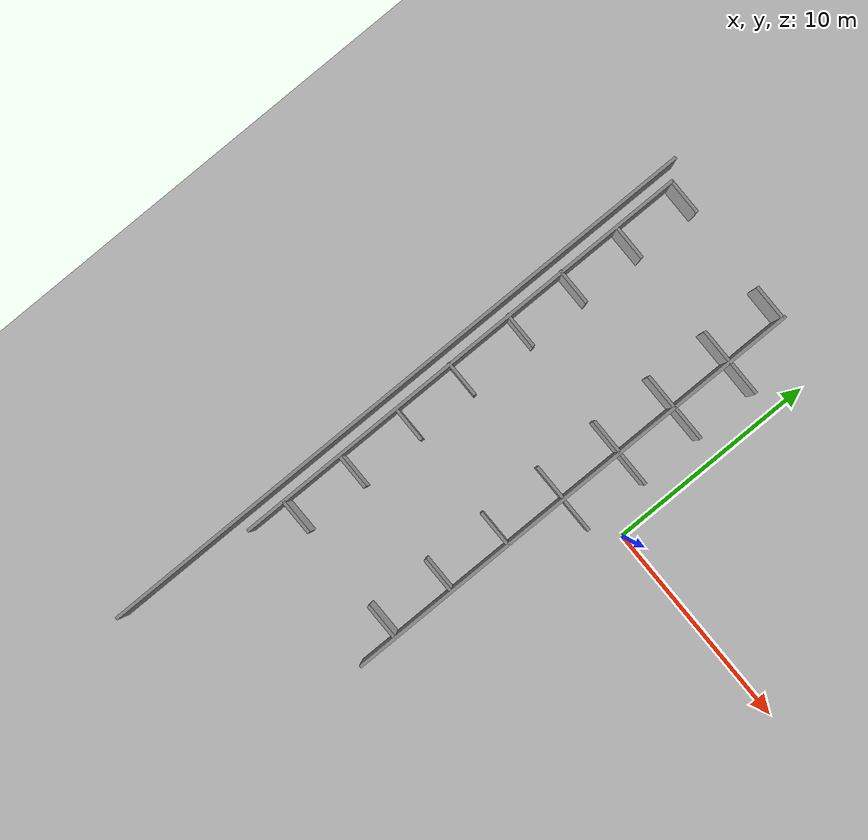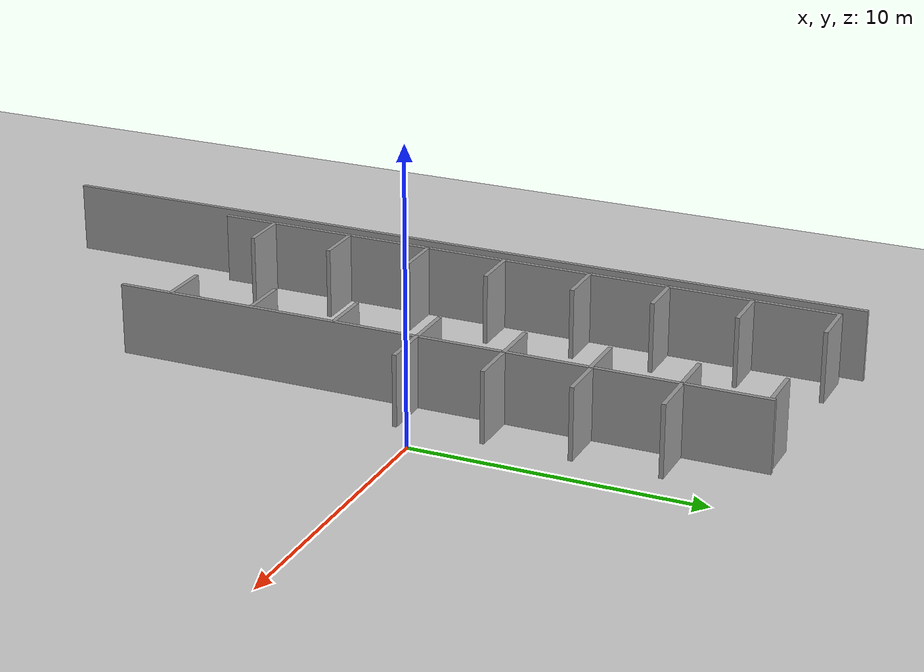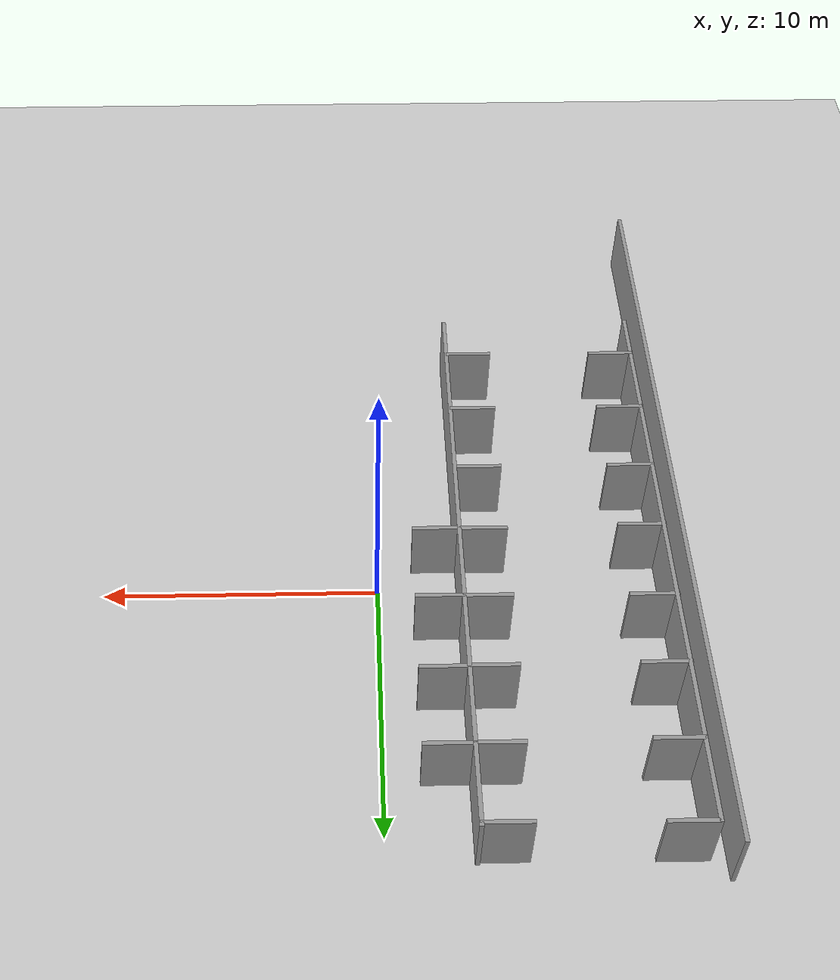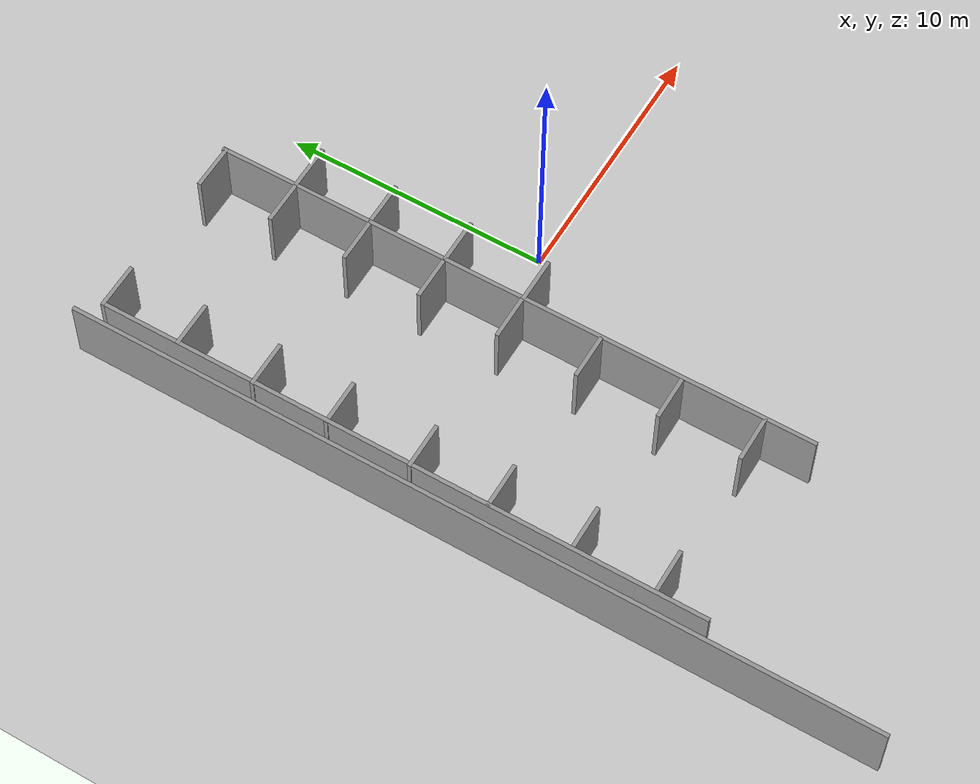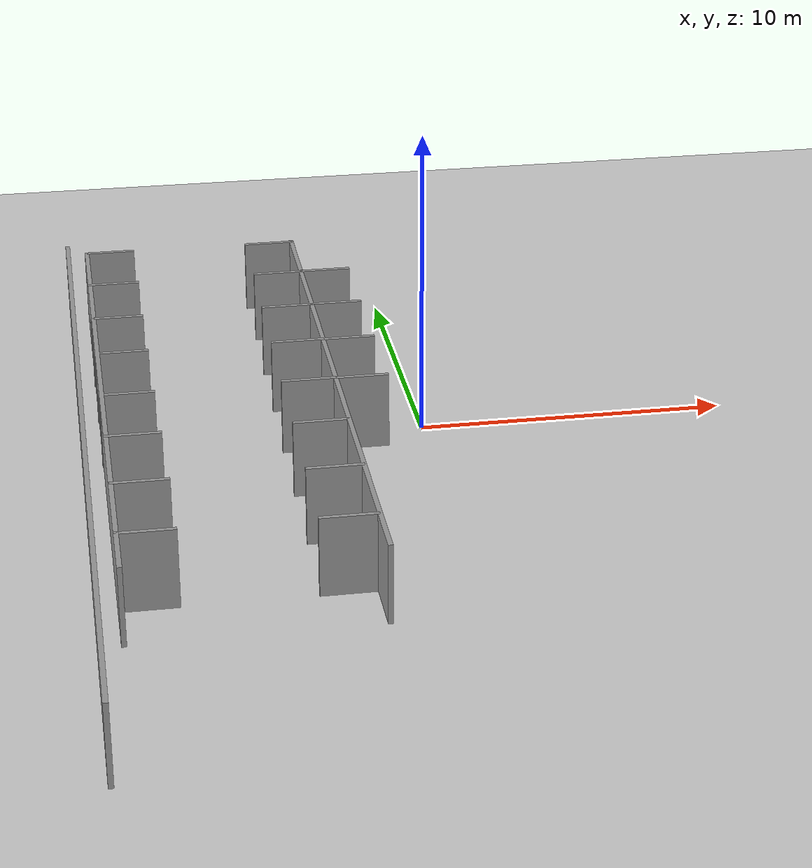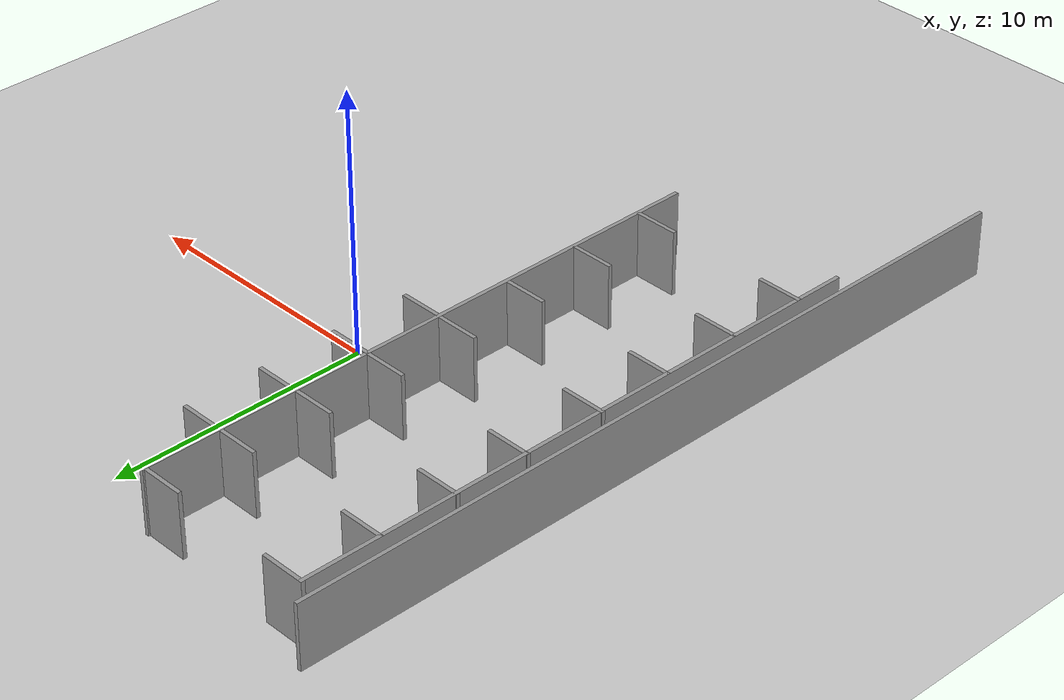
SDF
<sdf version="1.6">
 <world name="default">
  <model name="ground_plane">
   <static>1</static>
   <link name="link">
    <collision name="collision">
     <geometry><plane><normal>0 0 1</normal><size>100 100</size></plane></geometry>
     <surface>
      <contact><collide_bitmask>65535</collide_bitmask></contact>
      <friction><ode><mu>100</mu><mu2>50</mu2></ode></friction>
     </surface>
    </collision>
    <visual name="visual">
     <cast_shadows>0</cast_shadows>
     <geometry><plane><normal>0 0 1</normal><size>100 100</size></plane></geometry>
     <material>
      <script><uri>file://media/materials/scripts/gazebo.material</uri><name>Gazebo/Grey</name></script>
     </material>
    </visual>
   </link>
  </model>
  <model name="Warehouse_Map">
   <link name="Wall_10">
    <pose>-23.4629 14.3501 0 0 -0 3.14159</pose>
    <visual name="Wall_10_Visual">
     <pose>0 0 1.25 0 -0 0</pose>
     <geometry><box><size>1.75 0.15 2.5</size></box></geometry>
     <material>
      <script><uri>file://media/materials/scripts/gazebo.material</uri><name>Gazebo/Grey</name></script>
      <ambient>1 1 1 1</ambient>
      <shader type="pixel"/>
     </material>
     <meta><layer>0</layer></meta>
    </visual>
    <collision name="Wall_10_Collision">
     <pose>0 0 1.25 0 -0 0</pose>
     <geometry><box><size>1.75 0.15 2.5</size></box></geometry>
     <surface>
      <friction>
       <ode><mu>1</mu><mu2>1</mu2><fdir1>0 0 0</fdir1><slip1>0</slip1><slip2>0</slip2></ode>
       <torsional>
        <coefficient>1</coefficient>
        <patch_radius>0</patch_radius>
        <surface_radius>0</surface_radius>
        <use_patch_radius>1</use_patch_radius>
        <ode><slip>0</slip></ode>
       </torsional>
      </friction>
      <bounce><restitution_coefficient>0</restitution_coefficient><threshold>1e+06</threshold></bounce>
      <contact>
       <collide_without_contact>0</collide_without_contact>
       <collide_without_contact_bitmask>1</collide_without_contact_bitmask>
       <collide_bitmask>1</collide_bitmask>
       <ode>
        <soft_cfm>0</soft_cfm>
        <soft_erp>0.2</soft_erp>
        <kp>1e+13</kp>
        <kd>1</kd>
        <max_vel>0.01</max_vel>
        <min_depth>0</min_depth>
       </ode>
       <bullet>
        <split_impulse>1</split_impulse>
        <split_impulse_penetration_threshold>-0.01</split_impulse_penetration_threshold>
        <soft_cfm>0</soft_cfm>
        <soft_erp>0.2</soft_erp>
        <kp>1e+13</kp>
        <kd>1</kd>
       </bullet>
      </contact>
     </surface>
    </collision>
   </link>
   <link name="Wall_10_clone">
    <pose>-23.4598 11.3691 0 0 -0 3.14159</pose>
    <visual name="Wall_10_Visual">
     <pose>0 0 1.25 0 -0 0</pose>
     <geometry><box><size>1.75 0.15 2.5</size></box></geometry>
     <material>
      <script><uri>file://media/materials/scripts/gazebo.material</uri><name>Gazebo/Grey</name></script>
      <ambient>1 1 1 1</ambient>
      <shader type="pixel"/>
     </material>
     <meta><layer>0</layer></meta>
    </visual>
    <collision name="Wall_10_Collision">
     <pose>0 0 1.25 0 -0 0</pose>
     <geometry><box><size>1.75 0.15 2.5</size></box></geometry>
     <surface>
      <friction>
       <ode><mu>1</mu><mu2>1</mu2><fdir1>0 0 0</fdir1><slip1>0</slip1><slip2>0</slip2></ode>
       <torsional>
        <coefficient>1</coefficient>
        <patch_radius>0</patch_radius>
        <surface_radius>0</surface_radius>
        <use_patch_radius>1</use_patch_radius>
        <ode><slip>0</slip></ode>
       </torsional>
      </friction>
      <bounce><restitution_coefficient>0</restitution_coefficient><threshold>1e+06</threshold></bounce>
      <contact>
       <collide_without_contact>0</collide_without_contact>
       <collide_without_contact_bitmask>1</collide_without_contact_bitmask>
       <collide_bitmask>1</collide_bitmask>
       <ode>
        <soft_cfm>0</soft_cfm>
        <soft_erp>0.2</soft_erp>
        <kp>1e+13</kp>
        <kd>1</kd>
        <max_vel>0.01</max_vel>
        <min_depth>0</min_depth>
       </ode>
       <bullet>
        <split_impulse>1</split_impulse>
        <split_impulse_penetration_threshold>-0.01</split_impulse_penetration_threshold>
        <soft_cfm>0</soft_cfm>
        <soft_erp>0.2</soft_erp>
        <kp>1e+13</kp>
        <kd>1</kd>
       </bullet>
      </contact>
     </surface>
    </collision>
   </link>
   <link name="Wall_10_clone_0">
    <pose>-23.4859 8.40001 0 0 -0 3.14159</pose>
    <visual name="Wall_10_Visual">
     <pose>0 0 1.25 0 -0 0</pose>
     <geometry><box><size>1.75 0.15 2.5</size></box></geometry>
     <material>
      <script><uri>file://media/materials/scripts/gazebo.material</uri><name>Gazebo/Grey</name></script>
      <ambient>1 1 1 1</ambient>
      <shader type="pixel"/>
     </material>
     <meta><layer>0</layer></meta>
    </visual>
    <collision name="Wall_10_Collision">
     <pose>0 0 1.25 0 -0 0</pose>
     <geometry><box><size>1.75 0.15 2.5</size></box></geometry>
     <surface>
      <friction>
       <ode><mu>1</mu><mu2>1</mu2><fdir1>0 0 0</fdir1><slip1>0</slip1><slip2>0</slip2></ode>
       <torsional>
        <coefficient>1</coefficient>
        <patch_radius>0</patch_radius>
        <surface_radius>0</surface_radius>
        <use_patch_radius>1</use_patch_radius>
        <ode><slip>0</slip></ode>
       </torsional>
      </friction>
      <bounce><restitution_coefficient>0</restitution_coefficient><threshold>1e+06</threshold></bounce>
      <contact>
       <collide_without_contact>0</collide_without_contact>
       <collide_without_contact_bitmask>1</collide_without_contact_bitmask>
       <collide_bitmask>1</collide_bitmask>
       <ode>
        <soft_cfm>0</soft_cfm>
        <soft_erp>0.2</soft_erp>
        <kp>1e+13</kp>
        <kd>1</kd>
        <max_vel>0.01</max_vel>
        <min_depth>0</min_depth>
       </ode>
       <bullet>
        <split_impulse>1</split_impulse>
        <split_impulse_penetration_threshold>-0.01</split_impulse_penetration_threshold>
        <soft_cfm>0</soft_cfm>
        <soft_erp>0.2</soft_erp>
        <kp>1e+13</kp>
        <kd>1</kd>
       </bullet>
      </contact>
     </surface>
    </collision>
   </link>
   <link name="Wall_10_clone_1">
    <pose>-23.4859 5.53501 0 0 -0 3.14159</pose>
    <visual name="Wall_10_Visual">
     <pose>0 0 1.25 0 -0 0</pose>
     <geometry><box><size>1.75 0.15 2.5</size></box></geometry>
     <material>
      <script><uri>file://media/materials/scripts/gazebo.material</uri><name>Gazebo/Grey</name></script>
      <ambient>1 1 1 1</ambient>
      <shader type="pixel"/>
     </material>
     <meta><layer>0</layer></meta>
    </visual>
    <collision name="Wall_10_Collision">
     <pose>0 0 1.25 0 -0 0</pose>
     <geometry><box><size>1.75 0.15 2.5</size></box></geometry>
     <surface>
      <friction>
       <ode><mu>1</mu><mu2>1</mu2><fdir1>0 0 0</fdir1><slip1>0</slip1><slip2>0</slip2></ode>
       <torsional>
        <coefficient>1</coefficient>
        <patch_radius>0</patch_radius>
        <surface_radius>0</surface_radius>
        <use_patch_radius>1</use_patch_radius>
        <ode><slip>0</slip></ode>
       </torsional>
      </friction>
      <bounce><restitution_coefficient>0</restitution_coefficient><threshold>1e+06</threshold></bounce>
      <contact>
       <collide_without_contact>0</collide_without_contact>
       <collide_without_contact_bitmask>1</collide_without_contact_bitmask>
       <collide_bitmask>1</collide_bitmask>
       <ode>
        <soft_cfm>0</soft_cfm>
        <soft_erp>0.2</soft_erp>
        <kp>1e+13</kp>
        <kd>1</kd>
        <max_vel>0.01</max_vel>
        <min_depth>0</min_depth>
       </ode>
       <bullet>
        <split_impulse>1</split_impulse>
        <split_impulse_penetration_threshold>-0.01</split_impulse_penetration_threshold>
        <soft_cfm>0</soft_cfm>
        <soft_erp>0.2</soft_erp>
        <kp>1e+13</kp>
        <kd>1</kd>
       </bullet>
      </contact>
     </surface>
    </collision>
   </link>
   <link name="Wall_10_clone_10">
    <pose>-17.7362 5.4991 0 0 -0 3.14159</pose>
    <visual name="Wall_10_Visual">
     <pose>0 0 1.25 0 -0 0</pose>
     <geometry><box><size>1.75 0.15 2.5</size></box></geometry>
     <material>
      <script><uri>file://media/materials/scripts/gazebo.material</uri><name>Gazebo/Grey</name></script>
      <ambient>1 1 1 1</ambient>
      <shader type="pixel"/>
     </material>
     <meta><layer>0</layer></meta>
    </visual>
    <collision name="Wall_10_Collision">
     <pose>0 0 1.25 0 -0 0</pose>
     <geometry><box><size>1.75 0.15 2.5</size></box></geometry>
     <surface>
      <friction>
       <ode><mu>1</mu><mu2>1</mu2><fdir1>0 0 0</fdir1><slip1>0</slip1><slip2>0</slip2></ode>
       <torsional>
        <coefficient>1</coefficient>
        <patch_radius>0</patch_radius>
        <surface_radius>0</surface_radius>
        <use_patch_radius>1</use_patch_radius>
        <ode><slip>0</slip></ode>
       </torsional>
      </friction>
      <bounce><restitution_coefficient>0</restitution_coefficient><threshold>1e+06</threshold></bounce>
      <contact>
       <collide_without_contact>0</collide_without_contact>
       <collide_without_contact_bitmask>1</collide_without_contact_bitmask>
       <collide_bitmask>1</collide_bitmask>
       <ode>
        <soft_cfm>0</soft_cfm>
        <soft_erp>0.2</soft_erp>
        <kp>1e+13</kp>
        <kd>1</kd>
        <max_vel>0.01</max_vel>
        <min_depth>0</min_depth>
       </ode>
       <bullet>
        <split_impulse>1</split_impulse>
        <split_impulse_penetration_threshold>-0.01</split_impulse_penetration_threshold>
        <soft_cfm>0</soft_cfm>
        <soft_erp>0.2</soft_erp>
        <kp>1e+13</kp>
        <kd>1</kd>
       </bullet>
      </contact>
     </surface>
    </collision>
   </link>
   <link name="Wall_10_clone_11">
    <pose>-17.728 8.43865 0 0 -0 3.14159</pose>
    <visual name="Wall_10_Visual">
     <pose>0 0 1.25 0 -0 0</pose>
     <geometry><box><size>1.75 0.15 2.5</size></box></geometry>
     <material>
      <script><uri>file://media/materials/scripts/gazebo.material</uri><name>Gazebo/Grey</name></script>
      <ambient>1 1 1 1</ambient>
      <shader type="pixel"/>
     </material>
     <meta><layer>0</layer></meta>
    </visual>
    <collision name="Wall_10_Collision">
     <pose>0 0 1.25 0 -0 0</pose>
     <geometry><box><size>1.75 0.15 2.5</size></box></geometry>
     <surface>
      <friction>
       <ode><mu>1</mu><mu2>1</mu2><fdir1>0 0 0</fdir1><slip1>0</slip1><slip2>0</slip2></ode>
       <torsional>
        <coefficient>1</coefficient>
        <patch_radius>0</patch_radius>
        <surface_radius>0</surface_radius>
        <use_patch_radius>1</use_patch_radius>
        <ode><slip>0</slip></ode>
       </torsional>
      </friction>
      <bounce><restitution_coefficient>0</restitution_coefficient><threshold>1e+06</threshold></bounce>
      <contact>
       <collide_without_contact>0</collide_without_contact>
       <collide_without_contact_bitmask>1</collide_without_contact_bitmask>
       <collide_bitmask>1</collide_bitmask>
       <ode>
        <soft_cfm>0</soft_cfm>
        <soft_erp>0.2</soft_erp>
        <kp>1e+13</kp>
        <kd>1</kd>
        <max_vel>0.01</max_vel>
        <min_depth>0</min_depth>
       </ode>
       <bullet>
        <split_impulse>1</split_impulse>
        <split_impulse_penetration_threshold>-0.01</split_impulse_penetration_threshold>
        <soft_cfm>0</soft_cfm>
        <soft_erp>0.2</soft_erp>
        <kp>1e+13</kp>
        <kd>1</kd>
       </bullet>
      </contact>
     </surface>
    </collision>
   </link>
   <link name="Wall_10_clone_12">
    <pose>-17.6835 11.4373 0 0 -0 3.14159</pose>
    <visual name="Wall_10_Visual">
     <pose>0 0 1.25 0 -0 0</pose>
     <geometry><box><size>1.75 0.15 2.5</size></box></geometry>
     <material>
      <script><uri>file://media/materials/scripts/gazebo.material</uri><name>Gazebo/Grey</name></script>
      <ambient>1 1 1 1</ambient>
      <shader type="pixel"/>
     </material>
     <meta><layer>0</layer></meta>
    </visual>
    <collision name="Wall_10_Collision">
     <pose>0 0 1.25 0 -0 0</pose>
     <geometry><box><size>1.75 0.15 2.5</size></box></geometry>
     <surface>
      <friction>
       <ode><mu>1</mu><mu2>1</mu2><fdir1>0 0 0</fdir1><slip1>0</slip1><slip2>0</slip2></ode>
       <torsional>
        <coefficient>1</coefficient>
        <patch_radius>0</patch_radius>
        <surface_radius>0</surface_radius>
        <use_patch_radius>1</use_patch_radius>
        <ode><slip>0</slip></ode>
       </torsional>
      </friction>
      <bounce><restitution_coefficient>0</restitution_coefficient><threshold>1e+06</threshold></bounce>
      <contact>
       <collide_without_contact>0</collide_without_contact>
       <collide_without_contact_bitmask>1</collide_without_contact_bitmask>
       <collide_bitmask>1</collide_bitmask>
       <ode>
        <soft_cfm>0</soft_cfm>
        <soft_erp>0.2</soft_erp>
        <kp>1e+13</kp>
        <kd>1</kd>
        <max_vel>0.01</max_vel>
        <min_depth>0</min_depth>
       </ode>
       <bullet>
        <split_impulse>1</split_impulse>
        <split_impulse_penetration_threshold>-0.01</split_impulse_penetration_threshold>
        <soft_cfm>0</soft_cfm>
        <soft_erp>0.2</soft_erp>
        <kp>1e+13</kp>
        <kd>1</kd>
       </bullet>
      </contact>
     </surface>
    </collision>
   </link>
   <link name="Wall_10_clone_13">
    <pose>-17.7158 14.3021 0 0 -0 3.14159</pose>
    <visual name="Wall_10_Visual">
     <pose>0 0 1.25 0 -0 0</pose>
     <geometry><box><size>1.75 0.15 2.5</size></box></geometry>
     <material>
      <script><uri>file://media/materials/scripts/gazebo.material</uri><name>Gazebo/Grey</name></script>
      <ambient>1 1 1 1</ambient>
      <shader type="pixel"/>
     </material>
     <meta><layer>0</layer></meta>
    </visual>
    <collision name="Wall_10_Collision">
     <pose>0 0 1.25 0 -0 0</pose>
     <geometry><box><size>1.75 0.15 2.5</size></box></geometry>
     <surface>
      <friction>
       <ode><mu>1</mu><mu2>1</mu2><fdir1>0 0 0</fdir1><slip1>0</slip1><slip2>0</slip2></ode>
       <torsional>
        <coefficient>1</coefficient>
        <patch_radius>0</patch_radius>
        <surface_radius>0</surface_radius>
        <use_patch_radius>1</use_patch_radius>
        <ode><slip>0</slip></ode>
       </torsional>
      </friction>
      <bounce><restitution_coefficient>0</restitution_coefficient><threshold>1e+06</threshold></bounce>
      <contact>
       <collide_without_contact>0</collide_without_contact>
       <collide_without_contact_bitmask>1</collide_without_contact_bitmask>
       <collide_bitmask>1</collide_bitmask>
       <ode>
        <soft_cfm>0</soft_cfm>
        <soft_erp>0.2</soft_erp>
        <kp>1e+13</kp>
        <kd>1</kd>
        <max_vel>0.01</max_vel>
        <min_depth>0</min_depth>
       </ode>
       <bullet>
        <split_impulse>1</split_impulse>
        <split_impulse_penetration_threshold>-0.01</split_impulse_penetration_threshold>
        <soft_cfm>0</soft_cfm>
        <soft_erp>0.2</soft_erp>
        <kp>1e+13</kp>
        <kd>1</kd>
       </bullet>
      </contact>
     </surface>
    </collision>
   </link>
   <link name="Wall_10_clone_15">
    <pose>-16.0611 11.447 0 0 -0 3.14159</pose>
    <visual name="Wall_10_Visual">
     <pose>0 0 1.25 0 -0 0</pose>
     <geometry><box><size>1.75 0.15 2.5</size></box></geometry>
     <material>
      <script><uri>file://media/materials/scripts/gazebo.material</uri><name>Gazebo/Grey</name></script>
      <ambient>1 1 1 1</ambient>
      <shader type="pixel"/>
     </material>
     <meta><layer>0</layer></meta>
    </visual>
    <collision name="Wall_10_Collision">
     <pose>0 0 1.25 0 -0 0</pose>
     <geometry><box><size>1.75 0.15 2.5</size></box></geometry>
     <surface>
      <friction>
       <ode><mu>1</mu><mu2>1</mu2><fdir1>0 0 0</fdir1><slip1>0</slip1><slip2>0</slip2></ode>
       <torsional>
        <coefficient>1</coefficient>
        <patch_radius>0</patch_radius>
        <surface_radius>0</surface_radius>
        <use_patch_radius>1</use_patch_radius>
        <ode><slip>0</slip></ode>
       </torsional>
      </friction>
      <bounce><restitution_coefficient>0</restitution_coefficient><threshold>1e+06</threshold></bounce>
      <contact>
       <collide_without_contact>0</collide_without_contact>
       <collide_without_contact_bitmask>1</collide_without_contact_bitmask>
       <collide_bitmask>1</collide_bitmask>
       <ode>
        <soft_cfm>0</soft_cfm>
        <soft_erp>0.2</soft_erp>
        <kp>1e+13</kp>
        <kd>1</kd>
        <max_vel>0.01</max_vel>
        <min_depth>0</min_depth>
       </ode>
       <bullet>
        <split_impulse>1</split_impulse>
        <split_impulse_penetration_threshold>-0.01</split_impulse_penetration_threshold>
        <soft_cfm>0</soft_cfm>
        <soft_erp>0.2</soft_erp>
        <kp>1e+13</kp>
        <kd>1</kd>
       </bullet>
      </contact>
     </surface>
    </collision>
   </link>
   <link name="Wall_10_clone_16">
    <pose>-16.0702 8.46392 0 0 -0 3.14159</pose>
    <visual name="Wall_10_Visual">
     <pose>0 0 1.25 0 -0 0</pose>
     <geometry><box><size>1.75 0.15 2.5</size></box></geometry>
     <material>
      <script><uri>file://media/materials/scripts/gazebo.material</uri><name>Gazebo/Grey</name></script>
      <ambient>1 1 1 1</ambient>
      <shader type="pixel"/>
     </material>
     <meta><layer>0</layer></meta>
    </visual>
    <collision name="Wall_10_Collision">
     <pose>0 0 1.25 0 -0 0</pose>
     <geometry><box><size>1.75 0.15 2.5</size></box></geometry>
     <surface>
      <friction>
       <ode><mu>1</mu><mu2>1</mu2><fdir1>0 0 0</fdir1><slip1>0</slip1><slip2>0</slip2></ode>
       <torsional>
        <coefficient>1</coefficient>
        <patch_radius>0</patch_radius>
        <surface_radius>0</surface_radius>
        <use_patch_radius>1</use_patch_radius>
        <ode><slip>0</slip></ode>
       </torsional>
      </friction>
      <bounce><restitution_coefficient>0</restitution_coefficient><threshold>1e+06</threshold></bounce>
      <contact>
       <collide_without_contact>0</collide_without_contact>
       <collide_without_contact_bitmask>1</collide_without_contact_bitmask>
       <collide_bitmask>1</collide_bitmask>
       <ode>
        <soft_cfm>0</soft_cfm>
        <soft_erp>0.2</soft_erp>
        <kp>1e+13</kp>
        <kd>1</kd>
        <max_vel>0.01</max_vel>
        <min_depth>0</min_depth>
       </ode>
       <bullet>
        <split_impulse>1</split_impulse>
        <split_impulse_penetration_threshold>-0.01</split_impulse_penetration_threshold>
        <soft_cfm>0</soft_cfm>
        <soft_erp>0.2</soft_erp>
        <kp>1e+13</kp>
        <kd>1</kd>
       </bullet>
      </contact>
     </surface>
    </collision>
   </link>
   <link name="Wall_10_clone_17">
    <pose>-16.0699 5.48035 0 0 -0 3.14159</pose>
    <visual name="Wall_10_Visual">
     <pose>0 0 1.25 0 -0 0</pose>
     <geometry><box><size>1.75 0.15 2.5</size></box></geometry>
     <material>
      <script><uri>file://media/materials/scripts/gazebo.material</uri><name>Gazebo/Grey</name></script>
      <ambient>1 1 1 1</ambient>
      <shader type="pixel"/>
     </material>
     <meta><layer>0</layer></meta>
    </visual>
    <collision name="Wall_10_Collision">
     <pose>0 0 1.25 0 -0 0</pose>
     <geometry><box><size>1.75 0.15 2.5</size></box></geometry>
     <surface>
      <friction>
       <ode><mu>1</mu><mu2>1</mu2><fdir1>0 0 0</fdir1><slip1>0</slip1><slip2>0</slip2></ode>
       <torsional>
        <coefficient>1</coefficient>
        <patch_radius>0</patch_radius>
        <surface_radius>0</surface_radius>
        <use_patch_radius>1</use_patch_radius>
        <ode><slip>0</slip></ode>
       </torsional>
      </friction>
      <bounce><restitution_coefficient>0</restitution_coefficient><threshold>1e+06</threshold></bounce>
      <contact>
       <collide_without_contact>0</collide_without_contact>
       <collide_without_contact_bitmask>1</collide_without_contact_bitmask>
       <collide_bitmask>1</collide_bitmask>
       <ode>
        <soft_cfm>0</soft_cfm>
        <soft_erp>0.2</soft_erp>
        <kp>1e+13</kp>
        <kd>1</kd>
        <max_vel>0.01</max_vel>
        <min_depth>0</min_depth>
       </ode>
       <bullet>
        <split_impulse>1</split_impulse>
        <split_impulse_penetration_threshold>-0.01</split_impulse_penetration_threshold>
        <soft_cfm>0</soft_cfm>
        <soft_erp>0.2</soft_erp>
        <kp>1e+13</kp>
        <kd>1</kd>
       </bullet>
      </contact>
     </surface>
    </collision>
   </link>
   <link name="Wall_10_clone_18">
    <pose>-16.0825 2.42965 0 0 -0 3.14159</pose>
    <visual name="Wall_10_Visual">
     <pose>0 0 1.25 0 -0 0</pose>
     <geometry><box><size>1.75 0.15 2.5</size></box></geometry>
     <material>
      <script><uri>file://media/materials/scripts/gazebo.material</uri><name>Gazebo/Grey</name></script>
      <ambient>1 1 1 1</ambient>
      <shader type="pixel"/>
     </material>
     <meta><layer>0</layer></meta>
    </visual>
    <collision name="Wall_10_Collision">
     <pose>0 0 1.25 0 -0 0</pose>
     <geometry><box><size>1.75 0.15 2.5</size></box></geometry>
     <surface>
      <friction>
       <ode><mu>1</mu><mu2>1</mu2><fdir1>0 0 0</fdir1><slip1>0</slip1><slip2>0</slip2></ode>
       <torsional>
        <coefficient>1</coefficient>
        <patch_radius>0</patch_radius>
        <surface_radius>0</surface_radius>
        <use_patch_radius>1</use_patch_radius>
        <ode><slip>0</slip></ode>
       </torsional>
      </friction>
      <bounce><restitution_coefficient>0</restitution_coefficient><threshold>1e+06</threshold></bounce>
      <contact>
       <collide_without_contact>0</collide_without_contact>
       <collide_without_contact_bitmask>1</collide_without_contact_bitmask>
       <collide_bitmask>1</collide_bitmask>
       <ode>
        <soft_cfm>0</soft_cfm>
        <soft_erp>0.2</soft_erp>
        <kp>1e+13</kp>
        <kd>1</kd>
        <max_vel>0.01</max_vel>
        <min_depth>0</min_depth>
       </ode>
       <bullet>
        <split_impulse>1</split_impulse>
        <split_impulse_penetration_threshold>-0.01</split_impulse_penetration_threshold>
        <soft_cfm>0</soft_cfm>
        <soft_erp>0.2</soft_erp>
        <kp>1e+13</kp>
        <kd>1</kd>
       </bullet>
      </contact>
     </surface>
    </collision>
   </link>
   <link name="Wall_10_clone_2">
    <pose>-23.4859 2.35766 0 0 -0 3.14159</pose>
    <visual name="Wall_10_Visual">
     <pose>0 0 1.25 0 -0 0</pose>
     <geometry><box><size>1.75 0.15 2.5</size></box></geometry>
     <material>
      <script><uri>file://media/materials/scripts/gazebo.material</uri><name>Gazebo/Grey</name></script>
      <ambient>1 1 1 1</ambient>
      <shader type="pixel"/>
     </material>
     <meta><layer>0</layer></meta>
    </visual>
    <collision name="Wall_10_Collision">
     <pose>0 0 1.25 0 -0 0</pose>
     <geometry><box><size>1.75 0.15 2.5</size></box></geometry>
     <surface>
      <friction>
       <ode><mu>1</mu><mu2>1</mu2><fdir1>0 0 0</fdir1><slip1>0</slip1><slip2>0</slip2></ode>
       <torsional>
        <coefficient>1</coefficient>
        <patch_radius>0</patch_radius>
        <surface_radius>0</surface_radius>
        <use_patch_radius>1</use_patch_radius>
        <ode><slip>0</slip></ode>
       </torsional>
      </friction>
      <bounce><restitution_coefficient>0</restitution_coefficient><threshold>1e+06</threshold></bounce>
      <contact>
       <collide_without_contact>0</collide_without_contact>
       <collide_without_contact_bitmask>1</collide_without_contact_bitmask>
       <collide_bitmask>1</collide_bitmask>
       <ode>
        <soft_cfm>0</soft_cfm>
        <soft_erp>0.2</soft_erp>
        <kp>1e+13</kp>
        <kd>1</kd>
        <max_vel>0.01</max_vel>
        <min_depth>0</min_depth>
       </ode>
       <bullet>
        <split_impulse>1</split_impulse>
        <split_impulse_penetration_threshold>-0.01</split_impulse_penetration_threshold>
        <soft_cfm>0</soft_cfm>
        <soft_erp>0.2</soft_erp>
        <kp>1e+13</kp>
        <kd>1</kd>
       </bullet>
      </contact>
     </surface>
    </collision>
   </link>
   <link name="Wall_10_clone_3">
    <pose>-23.4598 -0.559446 0 0 -0 3.14159</pose>
    <visual name="Wall_10_Visual">
     <pose>0 0 1.25 0 -0 0</pose>
     <geometry><box><size>1.75 0.15 2.5</size></box></geometry>
     <material>
      <script><uri>file://media/materials/scripts/gazebo.material</uri><name>Gazebo/Grey</name></script>
      <ambient>1 1 1 1</ambient>
      <shader type="pixel"/>
     </material>
     <meta><layer>0</layer></meta>
    </visual>
    <collision name="Wall_10_Collision">
     <pose>0 0 1.25 0 -0 0</pose>
     <geometry><box><size>1.75 0.15 2.5</size></box></geometry>
     <surface>
      <friction>
       <ode><mu>1</mu><mu2>1</mu2><fdir1>0 0 0</fdir1><slip1>0</slip1><slip2>0</slip2></ode>
       <torsional>
        <coefficient>1</coefficient>
        <patch_radius>0</patch_radius>
        <surface_radius>0</surface_radius>
        <use_patch_radius>1</use_patch_radius>
        <ode><slip>0</slip></ode>
       </torsional>
      </friction>
      <bounce><restitution_coefficient>0</restitution_coefficient><threshold>1e+06</threshold></bounce>
      <contact>
       <collide_without_contact>0</collide_without_contact>
       <collide_without_contact_bitmask>1</collide_without_contact_bitmask>
       <collide_bitmask>1</collide_bitmask>
       <ode>
        <soft_cfm>0</soft_cfm>
        <soft_erp>0.2</soft_erp>
        <kp>1e+13</kp>
        <kd>1</kd>
        <max_vel>0.01</max_vel>
        <min_depth>0</min_depth>
       </ode>
       <bullet>
        <split_impulse>1</split_impulse>
        <split_impulse_penetration_threshold>-0.01</split_impulse_penetration_threshold>
        <soft_cfm>0</soft_cfm>
        <soft_erp>0.2</soft_erp>
        <kp>1e+13</kp>
        <kd>1</kd>
       </bullet>
      </contact>
     </surface>
    </collision>
   </link>
   <link name="Wall_10_clone_4">
    <pose>-23.4294 -3.6286 0 0 -0 3.14159</pose>
    <visual name="Wall_10_Visual">
     <pose>0 0 1.25 0 -0 0</pose>
     <geometry><box><size>1.75 0.15 2.5</size></box></geometry>
     <material>
      <script><uri>file://media/materials/scripts/gazebo.material</uri><name>Gazebo/Grey</name></script>
      <ambient>1 1 1 1</ambient>
      <shader type="pixel"/>
     </material>
     <meta><layer>0</layer></meta>
    </visual>
    <collision name="Wall_10_Collision">
     <pose>0 0 1.25 0 -0 0</pose>
     <geometry><box><size>1.75 0.15 2.5</size></box></geometry>
     <surface>
      <friction>
       <ode><mu>1</mu><mu2>1</mu2><fdir1>0 0 0</fdir1><slip1>0</slip1><slip2>0</slip2></ode>
       <torsional>
        <coefficient>1</coefficient>
        <patch_radius>0</patch_radius>
        <surface_radius>0</surface_radius>
        <use_patch_radius>1</use_patch_radius>
        <ode><slip>0</slip></ode>
       </torsional>
      </friction>
      <bounce><restitution_coefficient>0</restitution_coefficient><threshold>1e+06</threshold></bounce>
      <contact>
       <collide_without_contact>0</collide_without_contact>
       <collide_without_contact_bitmask>1</collide_without_contact_bitmask>
       <collide_bitmask>1</collide_bitmask>
       <ode>
        <soft_cfm>0</soft_cfm>
        <soft_erp>0.2</soft_erp>
        <kp>1e+13</kp>
        <kd>1</kd>
        <max_vel>0.01</max_vel>
        <min_depth>0</min_depth>
       </ode>
       <bullet>
        <split_impulse>1</split_impulse>
        <split_impulse_penetration_threshold>-0.01</split_impulse_penetration_threshold>
        <soft_cfm>0</soft_cfm>
        <soft_erp>0.2</soft_erp>
        <kp>1e+13</kp>
        <kd>1</kd>
       </bullet>
      </contact>
     </surface>
    </collision>
   </link>
   <link name="Wall_10_clone_5">
    <pose>-23.4517 -6.64151 0 0 -0 3.14159</pose>
    <visual name="Wall_10_Visual">
     <pose>0 0 1.25 0 -0 0</pose>
     <geometry><box><size>1.75 0.15 2.5</size></box></geometry>
     <material>
      <script><uri>file://media/materials/scripts/gazebo.material</uri><name>Gazebo/Grey</name></script>
      <ambient>1 1 1 1</ambient>
      <shader type="pixel"/>
     </material>
     <meta><layer>0</layer></meta>
    </visual>
    <collision name="Wall_10_Collision">
     <pose>0 0 1.25 0 -0 0</pose>
     <geometry><box><size>1.75 0.15 2.5</size></box></geometry>
     <surface>
      <friction>
       <ode><mu>1</mu><mu2>1</mu2><fdir1>0 0 0</fdir1><slip1>0</slip1><slip2>0</slip2></ode>
       <torsional>
        <coefficient>1</coefficient>
        <patch_radius>0</patch_radius>
        <surface_radius>0</surface_radius>
        <use_patch_radius>1</use_patch_radius>
        <ode><slip>0</slip></ode>
       </torsional>
      </friction>
      <bounce><restitution_coefficient>0</restitution_coefficient><threshold>1e+06</threshold></bounce>
      <contact>
       <collide_without_contact>0</collide_without_contact>
       <collide_without_contact_bitmask>1</collide_without_contact_bitmask>
       <collide_bitmask>1</collide_bitmask>
       <ode>
        <soft_cfm>0</soft_cfm>
        <soft_erp>0.2</soft_erp>
        <kp>1e+13</kp>
        <kd>1</kd>
        <max_vel>0.01</max_vel>
        <min_depth>0</min_depth>
       </ode>
       <bullet>
        <split_impulse>1</split_impulse>
        <split_impulse_penetration_threshold>-0.01</split_impulse_penetration_threshold>
        <soft_cfm>0</soft_cfm>
        <soft_erp>0.2</soft_erp>
        <kp>1e+13</kp>
        <kd>1</kd>
       </bullet>
      </contact>
     </surface>
    </collision>
   </link>
   <link name="Wall_10_clone_6">
    <pose>-17.7717 -6.67398 0 0 -0 3.14159</pose>
    <visual name="Wall_10_Visual">
     <pose>0 0 1.25 0 -0 0</pose>
     <geometry><box><size>1.75 0.15 2.5</size></box></geometry>
     <material>
      <script><uri>file://media/materials/scripts/gazebo.material</uri><name>Gazebo/Grey</name></script>
      <ambient>1 1 1 1</ambient>
      <shader type="pixel"/>
     </material>
     <meta><layer>0</layer></meta>
    </visual>
    <collision name="Wall_10_Collision">
     <pose>0 0 1.25 0 -0 0</pose>
     <geometry><box><size>1.75 0.15 2.5</size></box></geometry>
     <surface>
      <friction>
       <ode><mu>1</mu><mu2>1</mu2><fdir1>0 0 0</fdir1><slip1>0</slip1><slip2>0</slip2></ode>
       <torsional>
        <coefficient>1</coefficient>
        <patch_radius>0</patch_radius>
        <surface_radius>0</surface_radius>
        <use_patch_radius>1</use_patch_radius>
        <ode><slip>0</slip></ode>
       </torsional>
      </friction>
      <bounce><restitution_coefficient>0</restitution_coefficient><threshold>1e+06</threshold></bounce>
      <contact>
       <collide_without_contact>0</collide_without_contact>
       <collide_without_contact_bitmask>1</collide_without_contact_bitmask>
       <collide_bitmask>1</collide_bitmask>
       <ode>
        <soft_cfm>0</soft_cfm>
        <soft_erp>0.2</soft_erp>
        <kp>1e+13</kp>
        <kd>1</kd>
        <max_vel>0.01</max_vel>
        <min_depth>0</min_depth>
       </ode>
       <bullet>
        <split_impulse>1</split_impulse>
        <split_impulse_penetration_threshold>-0.01</split_impulse_penetration_threshold>
        <soft_cfm>0</soft_cfm>
        <soft_erp>0.2</soft_erp>
        <kp>1e+13</kp>
        <kd>1</kd>
       </bullet>
      </contact>
     </surface>
    </collision>
   </link>
   <link name="Wall_10_clone_7">
    <pose>-17.751 -3.62969 0 0 -0 3.14159</pose>
    <visual name="Wall_10_Visual">
     <pose>0 0 1.25 0 -0 0</pose>
     <geometry><box><size>1.75 0.15 2.5</size></box></geometry>
     <material>
      <script><uri>file://media/materials/scripts/gazebo.material</uri><name>Gazebo/Grey</name></script>
      <ambient>1 1 1 1</ambient>
      <shader type="pixel"/>
     </material>
     <meta><layer>0</layer></meta>
    </visual>
    <collision name="Wall_10_Collision">
     <pose>0 0 1.25 0 -0 0</pose>
     <geometry><box><size>1.75 0.15 2.5</size></box></geometry>
     <surface>
      <friction>
       <ode><mu>1</mu><mu2>1</mu2><fdir1>0 0 0</fdir1><slip1>0</slip1><slip2>0</slip2></ode>
       <torsional>
        <coefficient>1</coefficient>
        <patch_radius>0</patch_radius>
        <surface_radius>0</surface_radius>
        <use_patch_radius>1</use_patch_radius>
        <ode><slip>0</slip></ode>
       </torsional>
      </friction>
      <bounce><restitution_coefficient>0</restitution_coefficient><threshold>1e+06</threshold></bounce>
      <contact>
       <collide_without_contact>0</collide_without_contact>
       <collide_without_contact_bitmask>1</collide_without_contact_bitmask>
       <collide_bitmask>1</collide_bitmask>
       <ode>
        <soft_cfm>0</soft_cfm>
        <soft_erp>0.2</soft_erp>
        <kp>1e+13</kp>
        <kd>1</kd>
        <max_vel>0.01</max_vel>
        <min_depth>0</min_depth>
       </ode>
       <bullet>
        <split_impulse>1</split_impulse>
        <split_impulse_penetration_threshold>-0.01</split_impulse_penetration_threshold>
        <soft_cfm>0</soft_cfm>
        <soft_erp>0.2</soft_erp>
        <kp>1e+13</kp>
        <kd>1</kd>
       </bullet>
      </contact>
     </surface>
    </collision>
   </link>
   <link name="Wall_10_clone_8">
    <pose>-17.7598 -0.563874 0 0 -0 3.14159</pose>
    <visual name="Wall_10_Visual">
     <pose>0 0 1.25 0 -0 0</pose>
     <geometry><box><size>1.75 0.15 2.5</size></box></geometry>
     <material>
      <script><uri>file://media/materials/scripts/gazebo.material</uri><name>Gazebo/Grey</name></script>
      <ambient>1 1 1 1</ambient>
      <shader type="pixel"/>
     </material>
     <meta><layer>0</layer></meta>
    </visual>
    <collision name="Wall_10_Collision">
     <pose>0 0 1.25 0 -0 0</pose>
     <geometry><box><size>1.75 0.15 2.5</size></box></geometry>
     <surface>
      <friction>
       <ode><mu>1</mu><mu2>1</mu2><fdir1>0 0 0</fdir1><slip1>0</slip1><slip2>0</slip2></ode>
       <torsional>
        <coefficient>1</coefficient>
        <patch_radius>0</patch_radius>
        <surface_radius>0</surface_radius>
        <use_patch_radius>1</use_patch_radius>
        <ode><slip>0</slip></ode>
       </torsional>
      </friction>
      <bounce><restitution_coefficient>0</restitution_coefficient><threshold>1e+06</threshold></bounce>
      <contact>
       <collide_without_contact>0</collide_without_contact>
       <collide_without_contact_bitmask>1</collide_without_contact_bitmask>
       <collide_bitmask>1</collide_bitmask>
       <ode>
        <soft_cfm>0</soft_cfm>
        <soft_erp>0.2</soft_erp>
        <kp>1e+13</kp>
        <kd>1</kd>
        <max_vel>0.01</max_vel>
        <min_depth>0</min_depth>
       </ode>
       <bullet>
        <split_impulse>1</split_impulse>
        <split_impulse_penetration_threshold>-0.01</split_impulse_penetration_threshold>
        <soft_cfm>0</soft_cfm>
        <soft_erp>0.2</soft_erp>
        <kp>1e+13</kp>
        <kd>1</kd>
       </bullet>
      </contact>
     </surface>
    </collision>
   </link>
   <link name="Wall_10_clone_9">
    <pose>-17.7597 2.45012 0 0 -0 3.14159</pose>
    <visual name="Wall_10_Visual">
     <pose>0 0 1.25 0 -0 0</pose>
     <geometry><box><size>1.75 0.15 2.5</size></box></geometry>
     <material>
      <script><uri>file://media/materials/scripts/gazebo.material</uri><name>Gazebo/Grey</name></script>
      <ambient>1 1 1 1</ambient>
      <shader type="pixel"/>
     </material>
     <meta><layer>0</layer></meta>
    </visual>
    <collision name="Wall_10_Collision">
     <pose>0 0 1.25 0 -0 0</pose>
     <geometry><box><size>1.75 0.15 2.5</size></box></geometry>
     <surface>
      <friction>
       <ode><mu>1</mu><mu2>1</mu2><fdir1>0 0 0</fdir1><slip1>0</slip1><slip2>0</slip2></ode>
       <torsional>
        <coefficient>1</coefficient>
        <patch_radius>0</patch_radius>
        <surface_radius>0</surface_radius>
        <use_patch_radius>1</use_patch_radius>
        <ode><slip>0</slip></ode>
       </torsional>
      </friction>
      <bounce><restitution_coefficient>0</restitution_coefficient><threshold>1e+06</threshold></bounce>
      <contact>
       <collide_without_contact>0</collide_without_contact>
       <collide_without_contact_bitmask>1</collide_without_contact_bitmask>
       <collide_bitmask>1</collide_bitmask>
       <ode>
        <soft_cfm>0</soft_cfm>
        <soft_erp>0.2</soft_erp>
        <kp>1e+13</kp>
        <kd>1</kd>
        <max_vel>0.01</max_vel>
        <min_depth>0</min_depth>
       </ode>
       <bullet>
        <split_impulse>1</split_impulse>
        <split_impulse_penetration_threshold>-0.01</split_impulse_penetration_threshold>
        <soft_cfm>0</soft_cfm>
        <soft_erp>0.2</soft_erp>
        <kp>1e+13</kp>
        <kd>1</kd>
       </bullet>
      </contact>
     </surface>
    </collision>
   </link>
   <link name="Wall_11">
    <pose>-24.2629 2.92507 0 0 0 -1.5708</pose>
    <visual name="Wall_11_Visual">
     <pose>0 0 1.25 0 -0 0</pose>
     <geometry><box><size>23 0.15 2.5</size></box></geometry>
     <material>
      <script><uri>file://media/materials/scripts/gazebo.material</uri><name>Gazebo/Grey</name></script>
      <ambient>1 1 1 1</ambient>
      <shader type="pixel"/>
     </material>
     <meta><layer>0</layer></meta>
    </visual>
    <collision name="Wall_11_Collision">
     <pose>0 0 1.25 0 -0 0</pose>
     <geometry><box><size>23 0.15 2.5</size></box></geometry>
     <surface>
      <friction>
       <ode><mu>1</mu><mu2>1</mu2><fdir1>0 0 0</fdir1><slip1>0</slip1><slip2>0</slip2></ode>
       <torsional>
        <coefficient>1</coefficient>
        <patch_radius>0</patch_radius>
        <surface_radius>0</surface_radius>
        <use_patch_radius>1</use_patch_radius>
        <ode><slip>0</slip></ode>
       </torsional>
      </friction>
      <bounce><restitution_coefficient>0</restitution_coefficient><threshold>1e+06</threshold></bounce>
      <contact>
       <collide_without_contact>0</collide_without_contact>
       <collide_without_contact_bitmask>1</collide_without_contact_bitmask>
       <collide_bitmask>1</collide_bitmask>
       <ode>
        <soft_cfm>0</soft_cfm>
        <soft_erp>0.2</soft_erp>
        <kp>1e+13</kp>
        <kd>1</kd>
        <max_vel>0.01</max_vel>
        <min_depth>0</min_depth>
       </ode>
       <bullet>
        <split_impulse>1</split_impulse>
        <split_impulse_penetration_threshold>-0.01</split_impulse_penetration_threshold>
        <soft_cfm>0</soft_cfm>
        <soft_erp>0.2</soft_erp>
        <kp>1e+13</kp>
        <kd>1</kd>
       </bullet>
      </contact>
     </surface>
    </collision>
   </link>
   <link name="Wall_11_clone">
    <pose>-16.8981 2.9394 0 0 0 -1.5708</pose>
    <visual name="Wall_11_Visual">
     <pose>0 0 1.25 0 -0 0</pose>
     <geometry><box><size>23 0.15 2.5</size></box></geometry>
     <material>
      <script><uri>file://media/materials/scripts/gazebo.material</uri><name>Gazebo/Grey</name></script>
      <ambient>1 1 1 1</ambient>
      <shader type="pixel"/>
     </material>
     <meta><layer>0</layer></meta>
    </visual>
    <collision name="Wall_11_Collision">
     <pose>0 0 1.25 0 -0 0</pose>
     <geometry><box><size>23 0.15 2.5</size></box></geometry>
     <surface>
      <friction>
       <ode><mu>1</mu><mu2>1</mu2><fdir1>0 0 0</fdir1><slip1>0</slip1><slip2>0</slip2></ode>
       <torsional>
        <coefficient>1</coefficient>
        <patch_radius>0</patch_radius>
        <surface_radius>0</surface_radius>
        <use_patch_radius>1</use_patch_radius>
        <ode><slip>0</slip></ode>
       </torsional>
      </friction>
      <bounce><restitution_coefficient>0</restitution_coefficient><threshold>1e+06</threshold></bounce>
      <contact>
       <collide_without_contact>0</collide_without_contact>
       <collide_without_contact_bitmask>1</collide_without_contact_bitmask>
       <collide_bitmask>1</collide_bitmask>
       <ode>
        <soft_cfm>0</soft_cfm>
        <soft_erp>0.2</soft_erp>
        <kp>1e+13</kp>
        <kd>1</kd>
        <max_vel>0.01</max_vel>
        <min_depth>0</min_depth>
       </ode>
       <bullet>
        <split_impulse>1</split_impulse>
        <split_impulse_penetration_threshold>-0.01</split_impulse_penetration_threshold>
        <soft_cfm>0</soft_cfm>
        <soft_erp>0.2</soft_erp>
        <kp>1e+13</kp>
        <kd>1</kd>
       </bullet>
      </contact>
     </surface>
    </collision>
   </link>
   <link name="Wall_2">
    <pose>-24.9247 0.000155 0 0 -0 1.5708</pose>
    <visual name="Wall_2_Visual">
     <pose>0 0 1.25 0 -0 0</pose>
     <geometry><box><size>30.247 0.15 2.5</size></box></geometry>
     <material>
      <script><uri>file://media/materials/scripts/gazebo.material</uri><name>Gazebo/Grey</name></script>
      <ambient>1 1 1 1</ambient>
      <shader type="pixel"/>
     </material>
     <meta><layer>0</layer></meta>
    </visual>
    <collision name="Wall_2_Collision">
     <pose>0 0 1.25 0 -0 0</pose>
     <geometry><box><size>30.247 0.15 2.5</size></box></geometry>
     <surface>
      <friction>
       <ode><mu>1</mu><mu2>1</mu2><fdir1>0 0 0</fdir1><slip1>0</slip1><slip2>0</slip2></ode>
       <torsional>
        <coefficient>1</coefficient>
        <patch_radius>0</patch_radius>
        <surface_radius>0</surface_radius>
        <use_patch_radius>1</use_patch_radius>
        <ode><slip>0</slip></ode>
       </torsional>
      </friction>
      <bounce><restitution_coefficient>0</restitution_coefficient><threshold>1e+06</threshold></bounce>
      <contact>
       <collide_without_contact>0</collide_without_contact>
       <collide_without_contact_bitmask>1</collide_without_contact_bitmask>
       <collide_bitmask>1</collide_bitmask>
       <ode>
        <soft_cfm>0</soft_cfm>
        <soft_erp>0.2</soft_erp>
        <kp>1e+13</kp>
        <kd>1</kd>
        <max_vel>0.01</max_vel>
        <min_depth>0</min_depth>
       </ode>
       <bullet>
        <split_impulse>1</split_impulse>
        <split_impulse_penetration_threshold>-0.01</split_impulse_penetration_threshold>
        <soft_cfm>0</soft_cfm>
        <soft_erp>0.2</soft_erp>
        <kp>1e+13</kp>
        <kd>1</kd>
       </bullet>
      </contact>
     </surface>
    </collision>
   </link>
   <static>1</static>
   <pose>13.9577 -3.44941 0 0 -0 0</pose>
  </model>
 </world>
</sdf>
